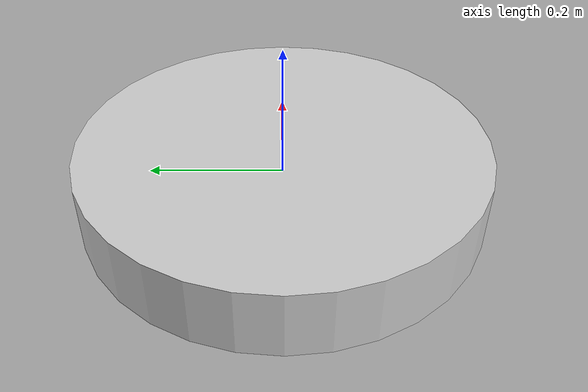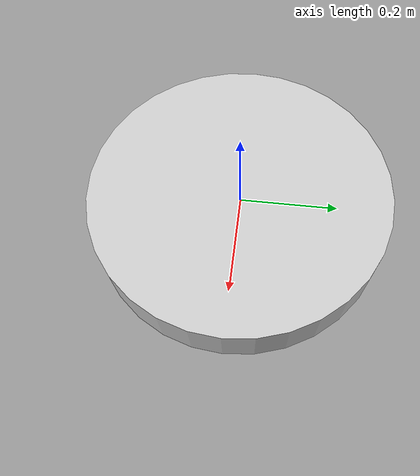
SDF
<?xml version="1.0" ?>
<sdf version="1.6">
  <model name="pothole">
    <pose>0 0 0 0 0 0</pose>
    <static>true</static>
    <link name="link">
      <inertial>
        <pose>0 0 0 0 0 0</pose>
        <mass>1</mass>
        <inertia>
          <ixx>1</ixx>
          <iyy>1</iyy>
          <izz>1</izz>
          <ixy>0</ixy>
          <ixz>0</ixz>
        </inertia>
      </inertial>
      <visual name="visual">
        <geometry>
          <mesh>
            <uri>model://pothole/meshes/pothole.dae</uri>
          </mesh>
        </geometry>
      </visual>
      <collision name="collision">
        <geometry>
          <mesh>
            <uri>model://pothole/meshes/pothole.dae</uri>
          </mesh>
        </geometry>
      </collision>
    </link>
  </model>
</sdf>
